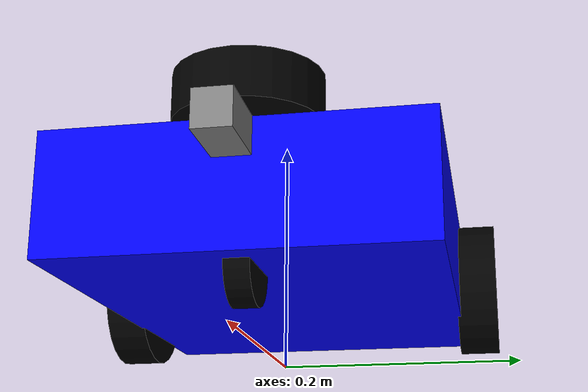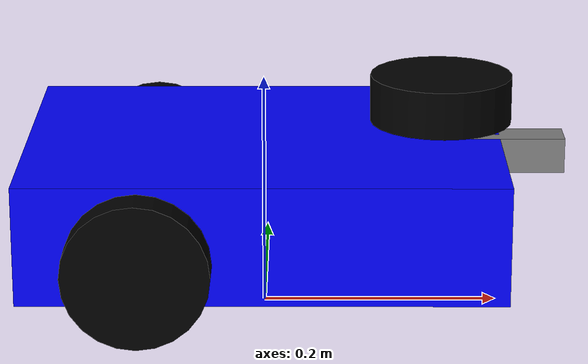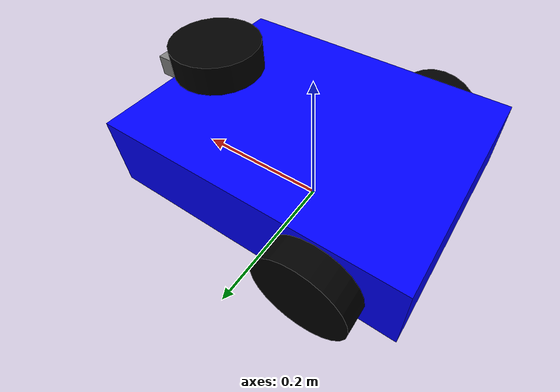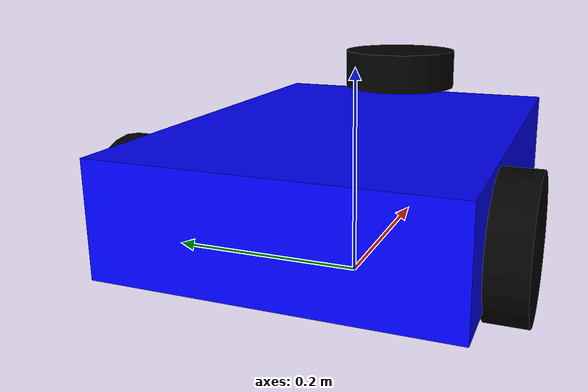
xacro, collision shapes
<?xml version="1.0"?>
<robot name="Eissa" xmlns:xacro="http://www.ros.org/wiki/xacro">

<!-- To use Mesh paths-->
<xacro:arg name="mesh_path" default="package://my_robot_description/meshes/"/>

<!-- Shared materials (declared once, referenced by name below) -->
<material name="blue">
    <color rgba="0 0 1 1"/>
</material>
<material name="black">
    <color rgba="0 0 0 1"/>
</material>
<material name="gray">
    <color rgba="0.5 0.5 0.5 1"/>
</material>

    <!--
    wheel Dimensions-->
<xacro:property name="Wheel_Rad" value="0.06"/>
<xacro:property name="Wheel_Length" value="0.035"/>
<xacro:property name = "wheel_mass" value = "0.1"/>

<!--
  Wheel position offsets from the center of the chassis. The offsets are defined in the chassis frame.
-->
<xacro:property name="wheel_x_offset" value="0.1"/>
<xacro:property name="wheel_y_offset" value="0.165"/>
<xacro:property name="wheel_z_offset" value="-0.015"/>

<xacro:property name = "pi_value" value = "3.14159"/>
<!-- chassis -->
<xacro:property name = "chassis_mass" value = "0.6"/>

<xacro:property name = "Chassis_x_size" value = "0.4"/>
<xacro:property name = "Chassis_y_size" value = "0.3"/>
<xacro:property name = "Chassis_z_size" value = "0.1"/>

<!-- Sensor / accessory mount offsets, relative to the chassis frame -->
<xacro:property name="lidar_x_offset" value="0.15"/>
<xacro:property name="lidar_z_offset" value="0.0825"/>

<xacro:property name="camera_x_offset" value="0.215"/>
<xacro:property name="camera_z_offset" value="0.035"/>

<xacro:property name="caster_x_offset" value="0.15"/>
<xacro:property name="caster_z_offset" value="-0.03"/>
<xacro:property name="caster_mesh_scale" value="3 3 3"/>
<xacro:property name="caster_swivel_mass" value="0.01"/>
<xacro:property name="caster_swivel_drop" value="0.02"/>

<!-- Macro for wheels-->

<link name="chassis">
    <visual>
        <origin xyz="0 0 0" rpy="0 0 0"/>
        <geometry>
            <box size="${Chassis_x_size} ${Chassis_y_size} ${Chassis_z_size}"/>
        </geometry>
        <material name="blue"/>
    </visual>
    <collision>
        <origin xyz="0 0 0" rpy="0 0 0"/>
        <geometry>
            <box size="${Chassis_x_size} ${Chassis_y_size} ${Chassis_z_size}"/>
        </geometry>
    </collision>
    <inertial>
        <origin xyz="0 0 0" rpy="0 0 0"/>
        <mass value="${chassis_mass}"/>
        <inertia ixx="0.01" ixy="0" ixz="0" iyy="0.01" iyz="0" izz="0.01"/>
    </inertial>
</link>

<link name="base_footprint">
</link>

<joint name="base_footprint_joint" type="fixed">
    <parent link="base_footprint"/>
    <child link="chassis"/>
    <origin xyz="0 0 0.1" rpy="0 0 0"/>
</joint>

<xacro:macro name="wheel_xacro" params="prefix x_reflect y_reflect">

<link name = "${prefix}_wheel" >
    <visual>
        <origin xyz="0 0 0" rpy="${pi_value/2} 0 0 "/>
        <geometry>
            <cylinder radius="${Wheel_Rad}" length="${Wheel_Length}"/>
        </geometry>
        <material name="black"/>
    </visual>
    <collision>
        <origin xyz="0 0 0" rpy="${pi_value/2} 0 0 "/>
        <geometry>
            <cylinder radius="${Wheel_Rad}" length="${Wheel_Length}"/>
        </geometry>
    </collision>
    <inertial>
        <origin xyz="0 0 0" rpy="${pi_value/2} 0 0"/>
        <mass value="${wheel_mass}"/>
        <inertia ixx="0.001" ixy="0" ixz="0" iyy="0.001" iyz="0" izz="0.001"/>
    </inertial>
</link>

    <joint name = "${prefix}_wheel_joint" type="continuous">
        <parent link="chassis"/>
        <child link="${prefix}_wheel"/>
        <origin xyz="${x_reflect * wheel_x_offset} ${y_reflect * wheel_y_offset} ${wheel_z_offset}" rpy="0 0 0"/>
        <axis xyz="0 1 0"/>
    </joint>
</xacro:macro>

<xacro:wheel_xacro prefix="rear_left"   x_reflect="-1" y_reflect="1"/>
<xacro:wheel_xacro prefix="rear_right"  x_reflect="-1" y_reflect="-1"/>

<!-- Lidar and Camera meshes-->

  <link name="lidar_link">
  <visual>
    <origin xyz="0 0 0" rpy="0 0 0"/>
    <geometry>
      <mesh filename="$(arg mesh_path)lidar.STL"/>
    </geometry>
    <material name="black"/>
  </visual>
  <collision>
    <origin xyz="0 0 0" rpy="0 0 0"/>
    <geometry>
      <cylinder radius="0.06" length="0.04"/>
    </geometry>
  </collision>
  <inertial>
    <mass value="0.2"/>
    <origin xyz="0 0 0" rpy="0 0 0"/>
    <inertia ixx="0.0001" ixy="0.0" ixz="0.0"
             iyy="0.0001" iyz="0.0"
             izz="0.0001"/>
  </inertial>
</link>

<joint name="lidar_joint" type="fixed">
  <parent link="chassis"/>
  <child link="lidar_link"/>
  <origin xyz="${lidar_x_offset} 0 ${lidar_z_offset}" rpy="0 0 0"/>
</joint>

<link name="camera_link">
  <visual>
    <origin xyz="0 0 0" rpy="0 0 0"/>
    <geometry>
      <mesh filename="$(arg mesh_path)zed.stl"/>
    </geometry>
    <material name="gray"/>
  </visual>
  <collision>
    <origin xyz="0 0 0" rpy="0 0 0"/>
    <geometry>
      <box size="0.08 0.03 0.03"/>
    </geometry>
  </collision>
  <inertial>
    <mass value="0.1"/>
    <origin xyz="0 0 0" rpy="0 0 0"/>
    <inertia ixx="0.00005" ixy="0.0" ixz="0.0"
             iyy="0.00005" iyz="0.0"
             izz="0.00005"/>
  </inertial>
</link>

<joint name="camera_joint" type="fixed">
  <parent link="chassis"/>
  <child link="camera_link"/>
  <origin xyz="${camera_x_offset} 0 ${camera_z_offset}" rpy="0 0 0"/>
</joint>

<link name="camera_optical_link"/>

<joint name="camera_optical_joint" type="fixed">
  <parent link="camera_link"/>
  <child link="camera_optical_link"/>
  <origin xyz="0 0 0" rpy="${-pi_value/2} 0 ${-pi_value/2}"/>
</joint>

<link name="caster_swivel_link">
    <inertial>
        <origin xyz="0 0 0" rpy="0 0 0"/>
        <mass value="${caster_swivel_mass}"/>
        <inertia ixx="1e-6" ixy="0" ixz="0" iyy="1e-6" iyz="0" izz="1e-6"/>
    </inertial>
</link>

<joint name="caster_swivel_joint" type="continuous">
    <parent link="chassis"/>
    <child link="caster_swivel_link"/>
    <origin xyz="${caster_x_offset} 0 ${caster_z_offset}" rpy="0 0 0"/>
    <axis xyz="0 0 1"/>
</joint>

 <link name="caster_wheel_link">
    <visual>
        <origin xyz="0 0 0" rpy="${-pi_value/2} 0 ${-pi_value/2}"/>
        <geometry>
      <mesh filename="$(arg mesh_path)Caster_Wheel.stl"
      scale="${caster_mesh_scale}"/>
        </geometry>
        <material name="black"/>
    </visual>
    <collision>
        <origin xyz="0 0 0" rpy="${pi_value/2} 0 0"/>
        <geometry>
            <cylinder radius="0.03" length="0.02"/>
        </geometry>
    </collision>
    <inertial>
        <origin xyz="0 0 0" rpy="0 0 0"/>
        <mass value="0.05"/>
        <inertia ixx="1e-5" ixy="0" ixz="0" iyy="1e-5" iyz="0" izz="1e-5"/>
    </inertial>
 </link>

 <joint name = "caster_wheel_joint" type="continuous">
    <parent link="caster_swivel_link"/>
    <child link="caster_wheel_link"/>
    <origin xyz="0 0 ${-caster_swivel_drop}" rpy="0 0 0"/>
    <axis xyz="0 1 0"/>
 </joint>

</robot>
